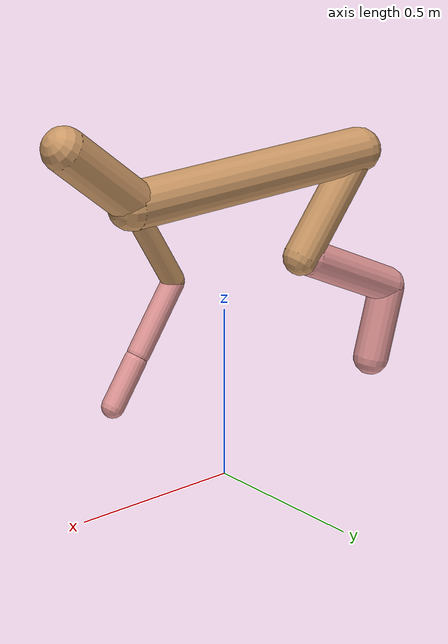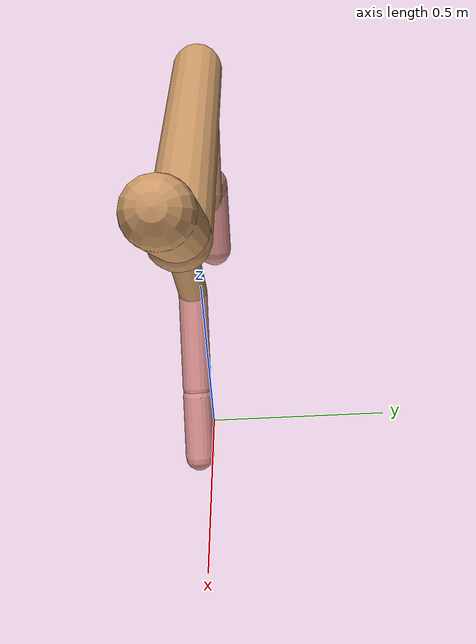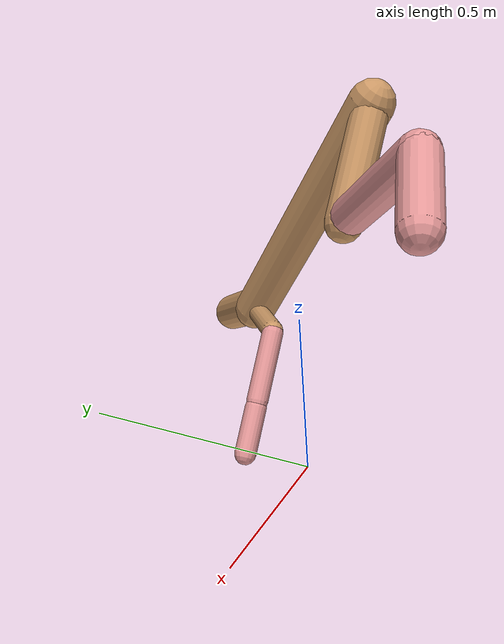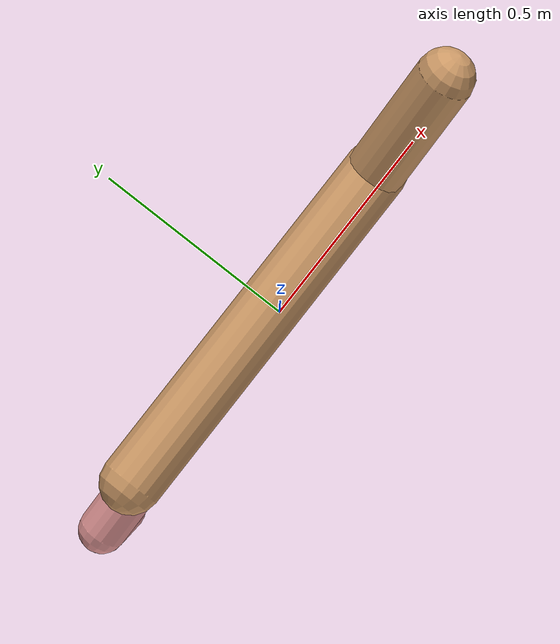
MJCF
<mujoco model="cheetah">
  <compiler angle="radian" coordinate="local" inertiafromgeom="true" settotalmass="14" />
  <default>
    <joint armature=".1" damping=".01" limited="true" solimplimit="0 .8 .03" solreflimit=".02 1" stiffness="8" />
    <geom conaffinity="0" condim="3" contype="1" friction="0.8 .1 .1" rgba="0.8 0.6 .4 1" solimp="0.0 0.8 0.01" solref="0.02 1" />
    <motor ctrllimited="true" ctrlrange="-1 1" />
  </default>
  <size nstack="300000" nuser_geom="1" />
  <option gravity="0 0 -9.81" timestep="0.01" />
  <worldbody>
    <body name="torso" pos="0.0 0.0 0.8669855258772303">
      <joint armature="0" axis="1 0 0" damping="0" limited="false" name="ignorex" pos="0 0 0" stiffness="0" type="slide" />
      <joint armature="0" axis="0 0 1" damping="0" limited="false" name="ignorez" pos="0 0 0" stiffness="0" type="slide" />
      <joint armature="0" axis="0 1 0" damping="0" limited="false" name="ignorey" pos="0 0 0" stiffness="0" type="hinge" />
      <geom fromto="-0.5 0.0 0.0 0.31914437431508563 0.0 0.0" name="torso" size="0.06637010338303705" type="capsule" />
      <geom axisangle="0 1 0 .87" name="head" pos="0.41914437431508567 0.0 0.1" size="0.06243374627038681 0.15" type="capsule" />

      <body name="bthigh" pos="-.5 0 0">
        <joint axis="0 1 0" damping="6" name="bthigh" pos="0 0 0" range="-.52 1.05" stiffness="240" type="hinge" />
        <geom axisangle="0 1 0 -3.8" name="bthigh" pos="0.11251090376682743 0.0 -0.14626417489687565" size="0.05303747536646839 0.1655194078408461" type="capsule" />
        <body name="bshin" pos="0.18502180753365485 0.0 -0.2825283497937513">
          <joint axis="0 1 0" damping="4.5" name="bshin" pos="0 0 0" range="-.785 .785" stiffness="180" type="hinge" />
          <geom axisangle="0 1 0 -2.03" name="bshin" pos="-0.15898598239593412 0.0 -0.07949299119796706" rgba="0.9 0.6 0.6 1" size="0.05303747536646839 0.17122697362846148" type="capsule" />
          <body name="bfoot" pos="-0.31797196479186823 0.0 -0.15898598239593412">
            <joint axis="0 1 0" damping="3" name="bfoot" pos="0 0 0" range="-.4 .785" stiffness="120" type="hinge" />
            <geom axisangle="0 1 0 -.27" name="bfoot" pos="0.03393040822365801 0.0 -0.10970831992316091" rgba="0.9 0.6 0.6 1" size="0.05303747536646839 0.1073022368071692" type="capsule" />
            <inertial mass="10" />
          </body>
        </body>
      </body>
      <body name="fthigh" pos="0.3191443743150857 0.0 0.0">
        <joint axis="0 1 0" damping="4.5" name="fthigh" pos="0 0 0" range="-1.5 0.8" stiffness="180" type="hinge" />
        <geom axisangle="0 1 0 .52" name="fthigh" pos="-0.07063179621628955 0.0 -0.12108307922792494" size="0.0322 0.134253884792507" type="capsule" />
        <body name="fshin" pos="-0.1412635924325791 0.0 -0.24216615845584988">
          <joint axis="0 1 0" damping="3" name="fshin" pos="0 0 0" range="-1.2 1.1" stiffness="120" type="hinge" />
          <geom axisangle="0 1 0 -.6" name="fshin" pos="0.06558510222836034 0.0 -0.09081014154696046" rgba="0.9 0.6 0.6 1" size="0.0322 0.10699933675192286" type="capsule" />
          <body name="ffoot" pos="0.13117020445672067 0.0 -0.18162028309392092">
            <joint axis="0 1 0" damping="1.5" name="ffoot" pos="0 0 0" range="-3.1 -0.3" stiffness="60" type="hinge" />
            <geom axisangle="0 1 0 -.6" name="ffoot" pos="0.045356867221147734 0.0 -0.07055512678845205" rgba="0.9 0.6 0.6 1" size="0.0322 0.07065993936447737" type="capsule" />
            <inertial mass="10" />
          </body>
        </body>
      </body>
    </body>
  </worldbody>
  <actuator>
    <motor gear="120" joint="bthigh" name="bthigh" />
    <motor gear="90" joint="bshin" name="bshin" />
    <motor gear="60" joint="bfoot" name="bfoot" />
    <motor gear="120" joint="fthigh" name="fthigh" />
    <motor gear="60" joint="fshin" name="fshin" />
    <motor gear="30" joint="ffoot" name="ffoot" />
  </actuator>
</mujoco>
